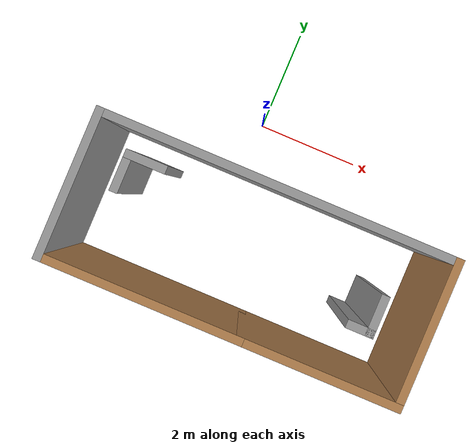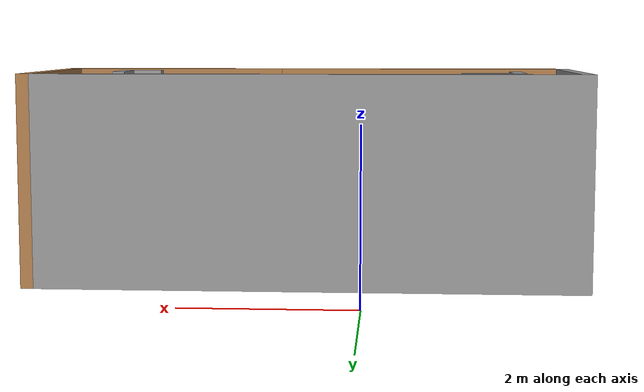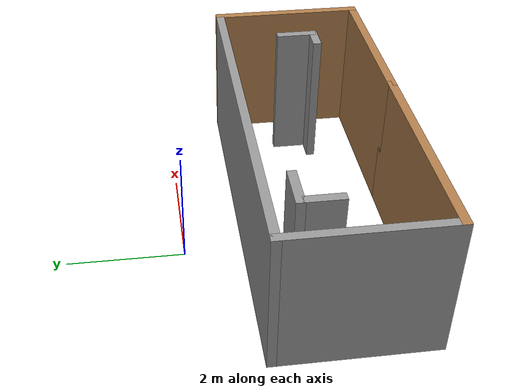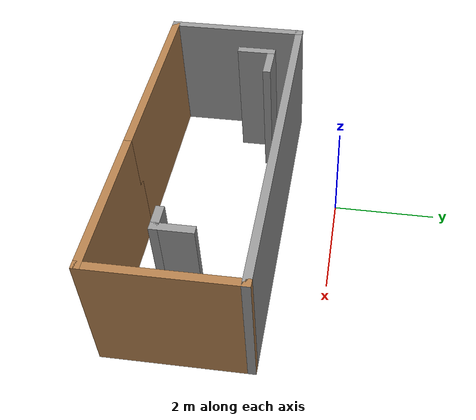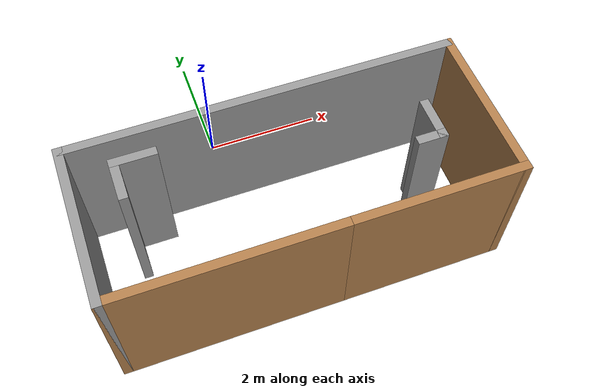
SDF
<?xml version='1.0'?>
<sdf version='1.6'>
  <model name='maze'>
    <pose frame=''>0.695 -2.38 0 0 -0 0</pose>
    <link name='Wall_0'>
      <collision name='Wall_0_Collision'>
        <geometry>
          <box>
            <size>2.75 0.15 2.5</size>
          </box>
        </geometry>
        <pose frame=''>0 0 1.25 0 -0 0</pose>
      </collision>
      <visual name='Wall_0_Visual'>
        <pose frame=''>0 0 1.25 0 -0 0</pose>
        <geometry>
          <box>
            <size>2.75 0.15 2.5</size>
          </box>
        </geometry>
        <material>
          <script>
            <uri>file://media/materials/scripts/gazebo.material</uri>
            <name>Gazebo/Grey</name>
          </script>
          <ambient>1 1 1 1</ambient>
        </material>
        <meta>
          <layer>0</layer>
        </meta>
      </visual>
      <pose frame=''>-3.225 -0 0 0 -0 -1.5708</pose>
    </link>
    <link name='Wall_1'>
      <collision name='Wall_1_Collision'>
        <geometry>
          <box>
            <size>3.75 0.15 2.5</size>
          </box>
        </geometry>
        <pose frame=''>0 0 1.25 0 -0 0</pose>
      </collision>
      <visual name='Wall_1_Visual'>
        <pose frame=''>0 0 1.25 0 -0 0</pose>
        <geometry>
          <box>
            <size>3.75 0.15 2.5</size>
          </box>
        </geometry>
        <material>
          <script>
            <uri>file://media/materials/scripts/gazebo.material</uri>
            <name>Gazebo/Wood</name>
          </script>
          <ambient>1 1 1 1</ambient>
        </material>
        <meta>
          <layer>0</layer>
        </meta>
      </visual>
      <pose frame=''>-1.425 -1.3 0 0 -0 0</pose>
    </link>
    <link name='Wall_10'>
      <collision name='Wall_10_Collision'>
        <geometry>
          <box>
            <size>0.5 0.15 2.5</size>
          </box>
        </geometry>
        <pose frame=''>0 0 1.25 0 -0 0</pose>
      </collision>
      <visual name='Wall_10_Visual'>
        <pose frame=''>0 0 1.25 0 -0 0</pose>
        <geometry>
          <box>
            <size>0.5 0.15 2.5</size>
          </box>
        </geometry>
        <material>
          <script>
            <uri>file://media/materials/scripts/gazebo.material</uri>
            <name>Gazebo/Grey</name>
          </script>
          <ambient>1 1 1 1</ambient>
        </material>
        <meta>
          <layer>0</layer>
        </meta>
      </visual>
      <pose frame=''>2.15 -0.34 0 0 -0 3.14159</pose>
    </link>
    <link name='Wall_2'>
      <collision name='Wall_2_Collision'>
        <geometry>
          <box>
            <size>3 0.15 2.5</size>
          </box>
        </geometry>
        <pose frame=''>0 0 1.25 0 -0 0</pose>
      </collision>
      <visual name='Wall_2_Visual'>
        <pose frame=''>0 0 1.25 0 -0 0</pose>
        <geometry>
          <box>
            <size>3 0.15 2.5</size>
          </box>
        </geometry>
        <material>
          <script>
            <uri>file://media/materials/scripts/gazebo.material</uri>
            <name>Gazebo/Wood</name>
          </script>
          <ambient>1 1 1 1</ambient>
        </material>
        <meta>
          <layer>0</layer>
        </meta>
      </visual>
      <pose frame=''>1.8 -1.3 0 0 -0 0</pose>
    </link>
    <link name='Wall_3'>
      <collision name='Wall_3_Collision'>
        <geometry>
          <box>
            <size>2.75 0.15 2.5</size>
          </box>
        </geometry>
        <pose frame=''>0 0 1.25 0 -0 0</pose>
      </collision>
      <visual name='Wall_3_Visual'>
        <pose frame=''>0 0 1.25 0 -0 0</pose>
        <geometry>
          <box>
            <size>2.75 0.15 2.5</size>
          </box>
        </geometry>
        <material>
          <script>
            <uri>file://media/materials/scripts/gazebo.material</uri>
            <name>Gazebo/Wood</name>
          </script>
          <ambient>1 1 1 1</ambient>
        </material>
        <meta>
          <layer>0</layer>
        </meta>
      </visual>
      <pose frame=''>3.225 -0 0 0 -0 1.5708</pose>
    </link>
    <link name='Wall_4'>
      <collision name='Wall_4_Collision'>
        <geometry>
          <box>
            <size>6.6 0.15 2.5</size>
          </box>
        </geometry>
        <pose frame=''>0 0 1.25 0 -0 0</pose>
      </collision>
      <visual name='Wall_4_Visual'>
        <pose frame=''>0 0 1.25 0 -0 0</pose>
        <geometry>
          <box>
            <size>6.6 0.15 2.5</size>
          </box>
        </geometry>
        <material>
          <script>
            <uri>file://media/materials/scripts/gazebo.material</uri>
            <name>Gazebo/Grey</name>
          </script>
          <ambient>1 1 1 1</ambient>
        </material>
        <meta>
          <layer>0</layer>
        </meta>
      </visual>
      <pose frame=''>-0 1.3 0 0 -0 3.14159</pose>
    </link>
    <link name='Wall_6'>
      <collision name='Wall_6_Collision'>
        <geometry>
          <box>
            <size>0.75 0.15 2.5</size>
          </box>
        </geometry>
        <pose frame=''>0 0 1.25 0 -0 0</pose>
      </collision>
      <visual name='Wall_6_Visual'>
        <pose frame=''>0 0 1.25 0 -0 0</pose>
        <geometry>
          <box>
            <size>0.75 0.15 2.5</size>
          </box>
        </geometry>
        <material>
          <script>
            <uri>file://media/materials/scripts/gazebo.material</uri>
            <name>Gazebo/Grey</name>
          </script>
          <ambient>1 1 1 1</ambient>
        </material>
        <meta>
          <layer>0</layer>
        </meta>
      </visual>
      <pose frame=''>-2.195 0.83 0 0 -0 3.14159</pose>
    </link>
    <link name='Wall_7'>
      <collision name='Wall_7_Collision'>
        <geometry>
          <box>
            <size>0.75 0.15 2.5</size>
          </box>
        </geometry>
        <pose frame=''>0 0 1.25 0 -0 0</pose>
      </collision>
      <visual name='Wall_7_Visual'>
        <pose frame=''>0 0 1.25 0 -0 0</pose>
        <geometry>
          <box>
            <size>0.75 0.15 2.5</size>
          </box>
        </geometry>
        <material>
          <script>
            <uri>file://media/materials/scripts/gazebo.material</uri>
            <name>Gazebo/Grey</name>
          </script>
          <ambient>1 1 1 1</ambient>
        </material>
        <meta>
          <layer>0</layer>
        </meta>
      </visual>
      <pose frame=''>-2.495 0.53 0 0 -0 -1.5708</pose>
    </link>
    <link name='Wall_9'>
      <collision name='Wall_9_Collision'>
        <geometry>
          <box>
            <size>0.75 0.15 2.5</size>
          </box>
        </geometry>
        <pose frame=''>0 0 1.25 0 -0 0</pose>
      </collision>
      <visual name='Wall_9_Visual'>
        <pose frame=''>0 0 1.25 0 -0 0</pose>
        <geometry>
          <box>
            <size>0.75 0.15 2.5</size>
          </box>
        </geometry>
        <material>
          <script>
            <uri>file://media/materials/scripts/gazebo.material</uri>
            <name>Gazebo/Grey</name>
          </script>
          <ambient>1 1 1 1</ambient>
        </material>
        <meta>
          <layer>0</layer>
        </meta>
      </visual>
      <pose frame=''>2.325 -0.04 0 0 -0 -1.5708</pose>
    </link>
    <static>1</static>
  </model>
</sdf>
